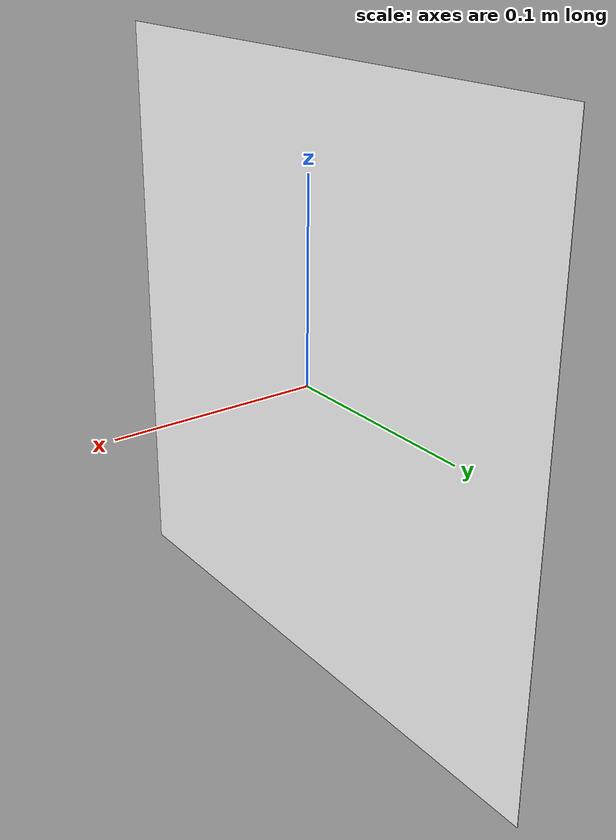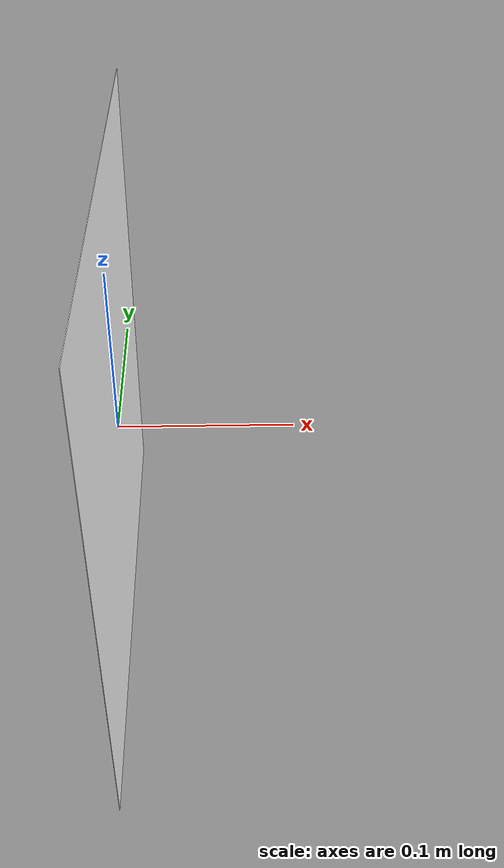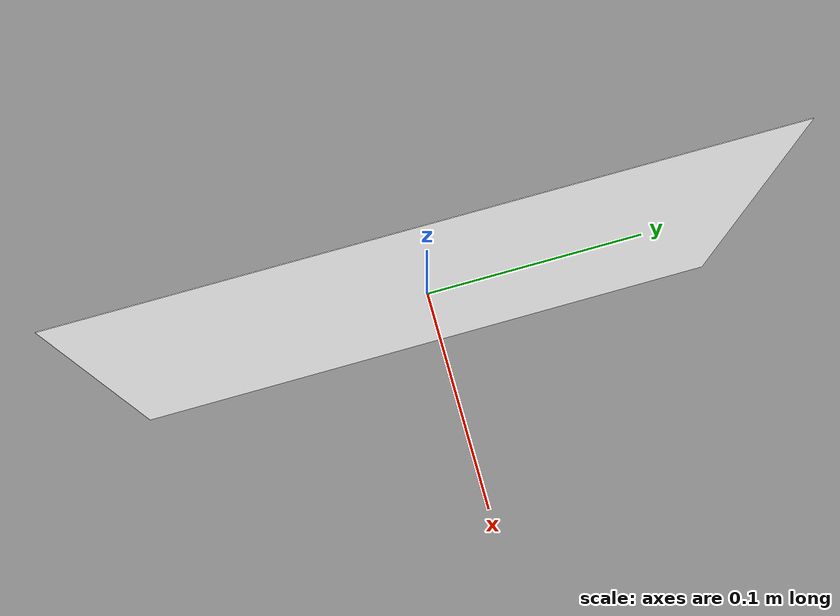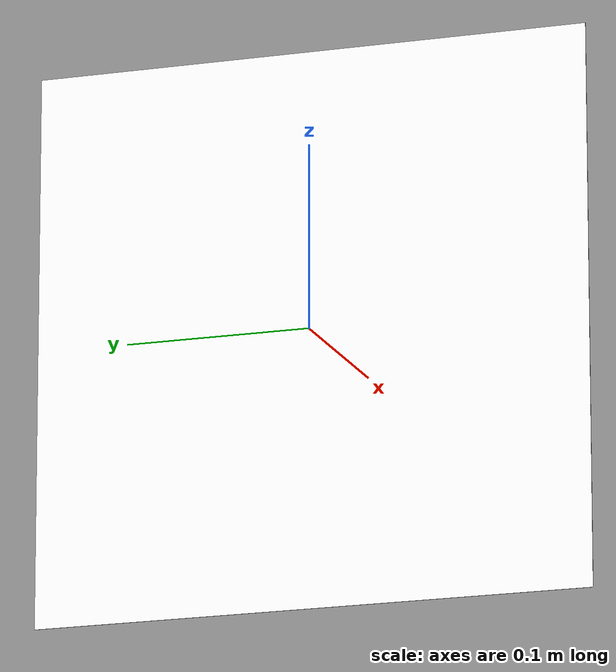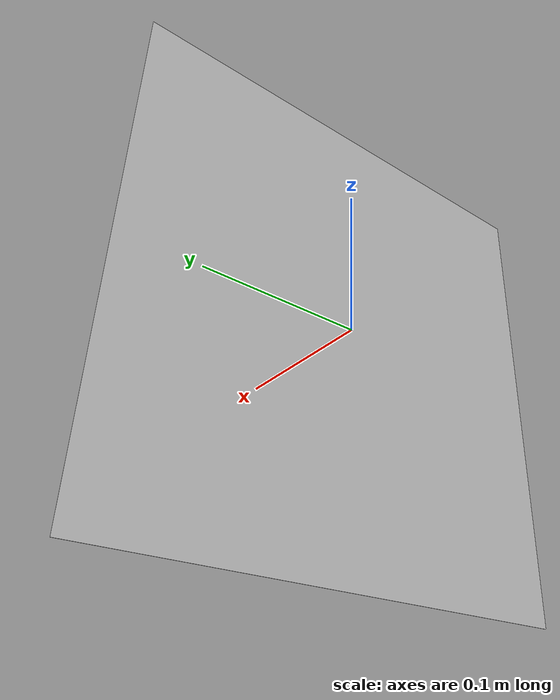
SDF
<?xml version="1.0" encoding="UTF-8"?>
<sdf version="1.7">
  <model name="right marker">
    <static>true</static>
    <pose>0 0 0 0 0 0</pose>

    <link name="base">

      <!-- 텍스처가 입혀진 10m x 6m 평면 (z=0.001로 z-fighting 방지) -->
      <visual name="base_visual_plane">
        <pose>0 0 0.001 0 1.5707 0</pose>
        <geometry>
          <plane>
            <normal>0 0 1</normal>
            <size>.3 .3</size>
          </plane>
        </geometry>
        <material>
          <script>
            <!-- 스크립트/텍스처 경로 등록 -->
            <uri>model://right_marker/materials/scripts</uri>
            <uri>model://right_marker/materials/textures</uri>
            <!-- ★ 스크립트에 정의한 이름과 동일해야 함 -->
            <name>Rightmarker/Albedo</name>
          </script>
          <!-- 아래 색상들은 스크립트가 대체하므로 굳이 필요 없음 (남겨도 무방) -->
          <ambient>1 1 1 1</ambient>
          <diffuse>1 1 1 1</diffuse>
          <specular>0 0 0 1</specular>
        </material>
      </visual>
    </link>
  </model>
</sdf>
